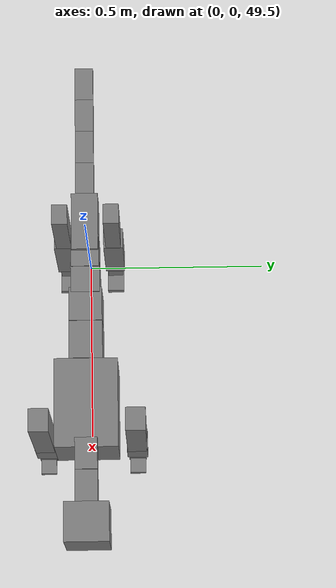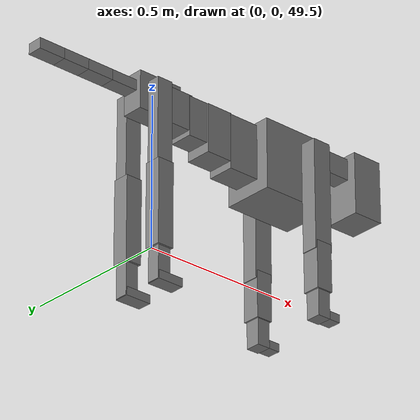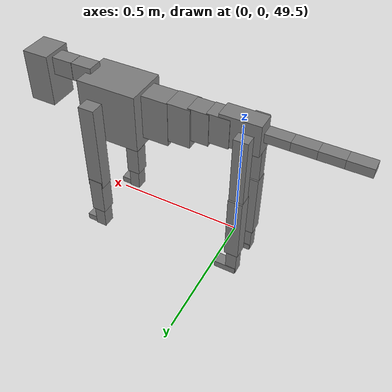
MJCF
<mujoco model="dog">

    <default>
        <joint armature="0.02" stiffness="1" damping="0.2" limited="true"/>
        <geom condim="3" friction="1 0.05 0.05" margin="0.01"/>
        <motor ctrllimited="true" ctrlrange="-1.0 1.0" forcelimited="true" gear="50"/>
    </default>

    <compiler inertiafromgeom="true" angle="radian"/>

    <option timestep="0.016" iterations="50" tolerance="1e-10" solver="Newton" jacobian="dense" cone="pyramidal"/>

    <size nconmax="20000" njmax="60000" nstack="5000000"/>
    <visual>
        <map force="0.1" zfar="30"/>
        <rgba haze="0.15 0.25 0.35 1"/>
        <quality shadowsize="2048"/>
        <global offwidth="800" offheight="800"/>
    </visual>

    <asset>
        <texture type="skybox" builtin="gradient" rgb1="0.3 0.5 0.7" rgb2="0 0 0" width="512" height="512"/>
        <texture name="texplane" type="2d" builtin="checker" rgb1=".2 .3 .4" rgb2=".1 0.15 0.2" width="512" height="512"
                 mark="cross" markrgb=".8 .8 .8"/>
        <texture name="texgeom" type="cube" builtin="flat" mark="cross" width="127" height="1278" rgb1="0.8 0.6 0.4"
                 rgb2="0.8 0.6 0.4" markrgb="1 1 1" random="0.01"/>

        <material name="matplane" reflectance="0.3" texture="texplane" texrepeat="1 1" texuniform="true"/>
        <material name="matgeom" texture="texgeom" texuniform="true" rgba="0.8 0.6 .4 1"/>
    </asset>

    <worldbody>
        <geom name="floor" pos="0 0 0" size="0 0 .25" type="plane" material="matplane" condim="3"/>

        <light directional="false" diffuse=".2 .2 .2" specular="0 0 0" pos="0 0 5" dir="0 0 -1" castshadow="false"/>
        <light mode="targetbodycom" target="torso" directional="false" diffuse=".8 .8 .8" specular="0.3 0.3 0.3"
               pos="0 0 4.0" dir="0 0 -1"/>

        <body name="root" pos="0 0 50">
            <freejoint name="root_1"/>
            <geom type="box" pos="0 0 -0.02" size="0.0774  0.0358  0.063" density="2030"/>

            <body name="spine1" pos="0.054 0 0">
                <joint name="spine1_y" axis="0 1 0" range="0 0.7" limited="true"/>
                <geom type="box" pos="0.02375 0 -0.03" size="0.04375  0.0375  0.05985" density="2030"/>

                <body name="spine2" pos="0.0612 0 0">
                    <joint name="spine2_y" axis="0 1 0" range="-0.15 0.15" limited="true"/>
                    <geom type="box" pos="0.03555  0  -0.04" size="0.04055  0.039  0.06615" density="2030"/>

                    <body name="spine3" pos="0.0730 0 0">
                        <joint name="spine3_y" axis="0 1 0" range="-0.15 0.15" limited="true"/>
                        <geom type="box" pos="0.03555  0  -0.057" size="0.04555  0.0445  0.081" density="2030"/>

                        <body name="spine4" pos="0.0780 0 0">
                            <joint name="spine4_y" axis="0 1 0" range="-0.15 0.15" limited="true"/>
                            <geom type="box" pos="0.05265  0  -0.07" size="0.05265  0.045  0.09135" density="2030"/>

                            <body name="torso" pos="0.1082 0 0">
                                <joint name="torso_y" axis="0 1 0" range="-0.15 0.15" limited="true"/>
                                <geom type="box" pos="0.11925  0  -0.085" size="0.11925  0.085  0.11745"
                                      density="2030"/>

                                <body name="neck1" pos="0.2160  0   0.0180">
                                    <joint name="neck1_y" axis="0 1 0" range="-1.2  -1" limited="true"/>
                                    <geom type="box" pos="0.0423  0  0" size="0.0423  0.03  0.036" density="2325"/>

                                    <body name="neck2" pos="0.0853  0  0">
                                        <joint name="neck2_y" axis="0 1 0" range="0.1  0" limited="true"/>
                                        <geom type="box" pos="0.0423  0  0" size="0.0423  0.03  0.036" density="2325"/>

                                        <body name="head" pos="0.0853  0  0">
                                            <joint name="head_y" axis="0 1 0" range="-0.3  -0.2" limited="true"/>
                                            <geom type="box" pos="0.0531  0  -0.055" size="0.0531  0.06  0.1044"
                                                  density="4030"/>

                                        </body>
                                    </body>
                                </body>

                                <body name="front_shoulder" pos="0.156  0   -0.0480">
                                    <joint name="front_shoulder_y" axis="0 1 0" range="-1 1.5" limited="true"/>
                                    <geom type="box" pos="0 0.13 -0.1560" size="0.0317  0.0271  0.1827" density="1158"/>
                                    <geom type="box" pos="0 -0.13 -0.1560" size="0.0317  0.0271  0.1827"
                                          density="1158"/>

                                    <body name="front_elbow" pos="0  0  -0.3121">
                                        <joint name="front_elbow_y" axis="0 1 0" range="-2 0" limited="true"/>
                                        <geom type="box" pos="0 0.13 -0.0782" size="0.0284  0.0290  0.0782"
                                              density="1081"/>
                                        <geom type="box" pos="0 -0.13 -0.0782" size="0.0284  0.0290  0.0782"
                                              density="1081"/>

                                        <body name="front_wrist" pos="0  0  -0.1564">
                                            <joint name="front_wrist_y" axis="0 1 0" range="-0.2 0" limited="true"/>
                                            <geom type="box" pos="0 0.13 -0.0367" size="0.0223  0.0248  0.0498"
                                                  density="1664"/>
                                            <geom type="box" pos="0 -0.13 -0.0367" size="0.0223  0.0248  0.0498"
                                                  density="1664"/>

                                            <body name="front_finger_end" pos="0  0  -0.0734">
                                                <joint name="front_finger_y" axis="0 1 0" range="-0.4 1"
                                                       limited="true"/>
                                                <geom type="box" pos="0.0224  0.13  0.0017"
                                                      size="0.0410  0.0224  0.0133" density="1515"/>
                                                <geom type="box" pos="0.0224  -0.13  0.0017"
                                                      size="0.0410  0.0224  0.0133" density="1515"/>

                                            </body>

                                        </body>
                                    </body>
                                </body>

                            </body>
                        </body>
                    </body>
                </body>
            </body>

            <body name="back_hip" pos="-0.03 0 -0.018">
                <joint name="back_hip_y" axis="0 1 0" range="-1.5 0.3" limited="true"/>
                <geom type="box" pos="0 0.07 -0.1310" size="0.0273  0.0214  0.1538" density="1154"/>
                <geom type="box" pos="0 -0.07 -0.1310" size="0.0273  0.0214  0.1538" density="1154"/>

                <body name="back_knee" pos="0  0  -0.2621">
                    <joint name="back_knee_y" axis="0 1 0" range="0 2.8" limited="true"/>
                    <geom type="box" pos="0 0.07 -0.1225" size="0.0279  0.0275  0.1381" density="1227"/>
                    <geom type="box" pos="0 -0.07 -0.1225" size="0.0279  0.0275  0.1381" density="1227"/>

                    <body name="back_ankle" pos="0  0  -0.2451">
                        <joint name="back_ankle_y" axis="0 1 0" range="-2.2 0" limited="true"/>
                        <geom type="box" pos="0 0.07 -0.0554" size="0.0216  0.0216  0.0667" density="1284"/>
                        <geom type="box" pos="0 -0.07 -0.0554" size="0.0216  0.0216  0.0667" density="1284"/>

                        <body name="back_toe_end" pos="0  0  -0.1109">
                            <joint name="back_toe_y" axis="0 1 0" range="-0.4 1" limited="true"/>
                            <geom type="box" pos="0.0238  0.07  0.0012" size="0.0436  0.0238  0.0138" density="1515"/>
                            <geom type="box" pos="0.0238  -0.07  0.0012" size="0.0436  0.0238  0.0138" density="1515"/>

                        </body>
                    </body>
                </body>
            </body>

            <body name="tail1" pos="-0.074 0 -0.006">
                <joint name="tail1_y" axis="0 1 0" range="-0.2 0.2" limited="true"/>
                <geom type="box" pos="-0.0536  0  0" size="0.045  0.025  0.0175" density="1587"/>

                <body name="tail2" pos="-0.09 0 0">
                    <joint name="tail2_y" axis="0 1 0" range="-0.2 0.2" limited="true"/>
                    <geom type="box" pos="-0.0536  0  0" size="0.045  0.025  0.0175" density="1587"/>

                    <body name="tail3" pos="-0.09 0 0">
                        <joint name="tail3_y" axis="0 1 0" range="-0.2 0.2" limited="true"/>
                        <geom type="box" pos="-0.0536  0  0" size="0.045  0.025  0.0175" density="1587"/>

                        <body name="tail4" pos="-0.09 0 0">
                            <joint name="tail4_y" axis="0 1 0" range="-0.2 0.2" limited="true"/>
                            <geom type="box" pos="-0.0536  0  0" size="0.045  0.025  0.0175" density="1587"/>

                        </body>
                    </body>
                </body>
            </body>
        </body>
    </worldbody>

    <actuator>
        <motor joint="spine1_y" forcerange="-150 150     "/>
        <motor joint="spine2_y" forcerange="-150 150     "/>
        <motor joint="spine3_y" forcerange="-150 150     "/>
        <motor joint="spine4_y" forcerange="-150 150     "/>
        <motor joint="torso_y" forcerange="-150 150     "/>
        <motor joint="neck1_y" forcerange="-100 100       "/>
        <motor joint="neck2_y" forcerange="-100 100       "/>
        <motor joint="head_y" forcerange="-150 150       "/>
        <motor joint="front_shoulder_y" forcerange="-153.88 127.03"/>
        <motor joint="front_elbow_y" forcerange="-159.83 151.31"/>
        <motor joint="front_wrist_y" forcerange="-74.69 123.57"/>
        <motor joint="front_finger_y" forcerange="-53.25 26.01"/>
        <motor joint="back_hip_y" forcerange="-249.36 235.73"/>
        <motor joint="back_knee_y" forcerange="-327.44 273.20"/>
        <motor joint="back_angle_y" forcerange="-187.90 57.49"/>
        <motor joint="back_toe_y" forcerange="-73.70 36.37"/>
        <motor joint="tail1_y" forcerange="-50 50     "/>
        <motor joint="tail2_y" forcerange="-50 50     "/>
        <motor joint="tail3_y" forcerange="-50 50     "/>
        <motor joint="tail4_y" forcerange="-50 50     "/>
    </actuator>
</mujoco>
